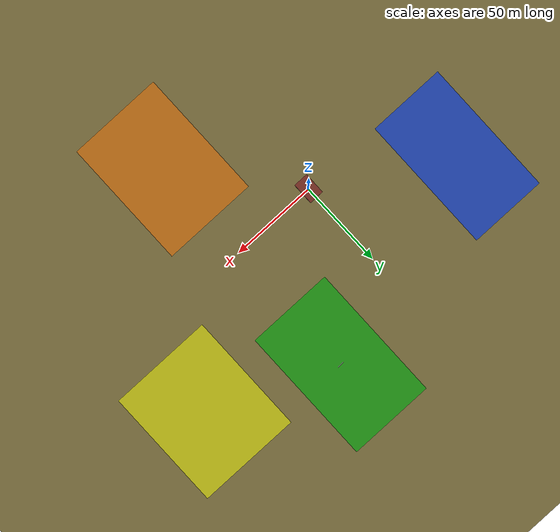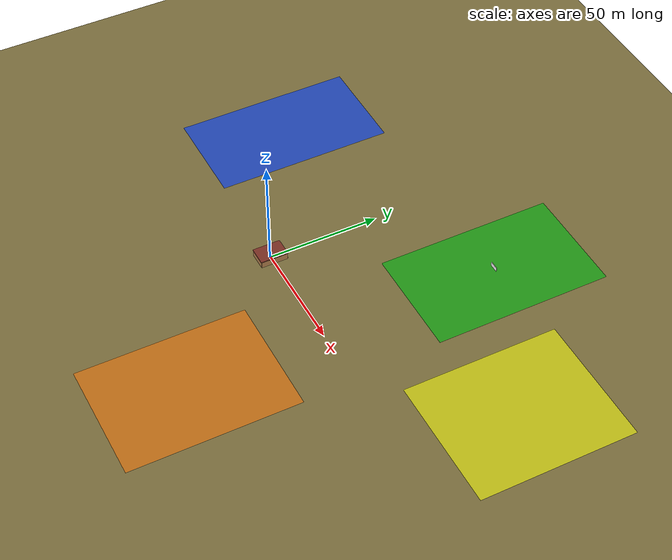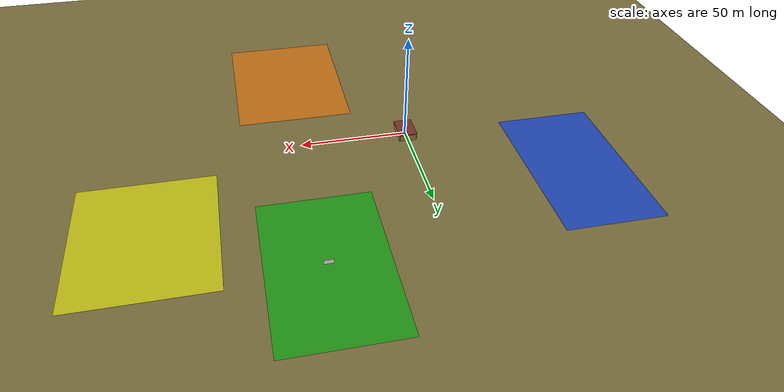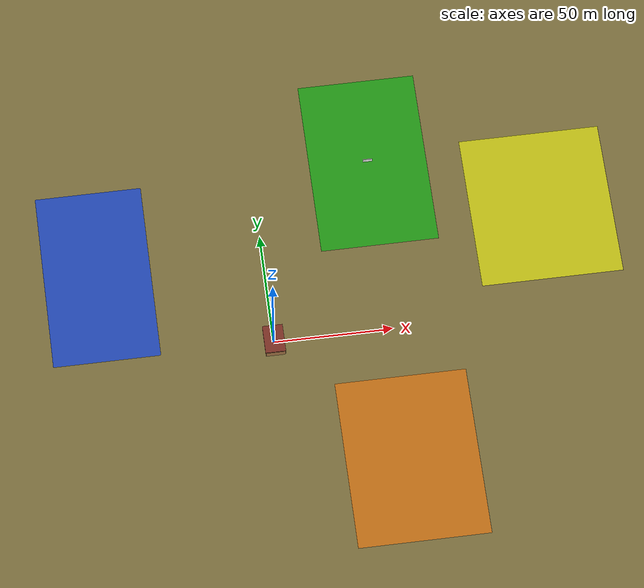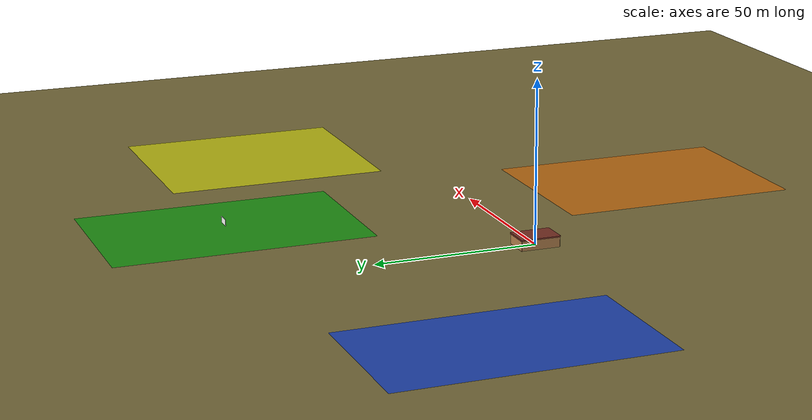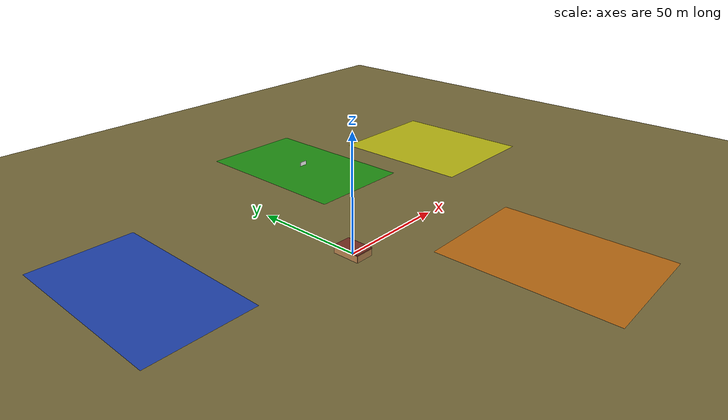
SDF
<?xml version="1.0"?>
<sdf version="1.9">
  <world name="agricultural_field">

    <!-- Physics -->
    <physics name="1ms" type="ignored">
      <max_step_size>0.001</max_step_size>
      <real_time_factor>1.0</real_time_factor>
    </physics>

    <!-- Plugins -->
    <plugin filename="gz-sim-physics-system" name="gz::sim::systems::Physics"/>
    <plugin filename="gz-sim-user-commands-system" name="gz::sim::systems::UserCommands"/>
    <plugin filename="gz-sim-scene-broadcaster-system" name="gz::sim::systems::SceneBroadcaster"/>
    <plugin filename="gz-sim-sensors-system" name="gz::sim::systems::Sensors">
      <render_engine>ogre2</render_engine>
    </plugin>
    <plugin filename="gz-sim-imu-system" name="gz::sim::systems::Imu"/>
    <plugin filename="gz-sim-magnetometer-system" name="gz::sim::systems::Magnetometer"/>
    <plugin filename="gz-sim-air-pressure-system" name="gz::sim::systems::AirPressure"/>

    <!-- Lighting -->
    <light name="sun" type="directional">
      <cast_shadows>true</cast_shadows>
      <pose>0 0 100 0 0 0</pose>
      <diffuse>0.9 0.9 0.9 1</diffuse>
      <specular>0.3 0.3 0.3 1</specular>
      <direction>-0.5 0.1 -0.9</direction>
    </light>

    <!-- Ground Plane -->
    <model name="ground_plane">
      <static>true</static>
      <link name="link">
        <collision name="collision">
          <geometry>
            <plane>
              <normal>0 0 1</normal>
              <size>500 500</size>
            </plane>
          </geometry>
        </collision>
        <visual name="visual">
          <geometry>
            <plane>
              <normal>0 0 1</normal>
              <size>500 500</size>
            </plane>
          </geometry>
          <material>
            <ambient>0.4 0.35 0.2 1</ambient>
            <diffuse>0.5 0.45 0.25 1</diffuse>
          </material>
        </visual>
      </link>
    </model>

    <!--  FIELD ZONES                                       -->

    <!-- Zone A - North Field (Green) centered at (50, 80) -->
    <model name="zone_A">
      <static>true</static>
      <pose>50 80 0.02 0 0 0</pose>
      <link name="link">
        <collision name="col">
          <geometry><box><size>50 80 0.04</size></box></geometry>
        </collision>
        <visual name="vis">
          <geometry><box><size>50 80 0.04</size></box></geometry>
          <material>
            <ambient>0.1 0.6 0.1 0.8</ambient>
            <diffuse>0.1 0.7 0.1 0.8</diffuse>
          </material>
        </visual>
      </link>
    </model>

    <!-- Zone A Label -->
    <model name="zone_A_sign">
      <static>true</static>
      <pose>50 80 2.0 0 0 0</pose>
      <link name="link">
        <visual name="vis">
          <geometry><box><size>4 0.2 2</size></box></geometry>
          <material><ambient>1 1 1 1</ambient><diffuse>1 1 1 1</diffuse></material>
        </visual>
      </link>
    </model>

    <!-- Zone B - East Field (Yellow) centered at (120, 50) -->
    <model name="zone_B">
      <static>true</static>
      <pose>120 50 0.02 0 0 0</pose>
      <link name="link">
        <collision name="col">
          <geometry><box><size>60 70 0.04</size></box></geometry>
        </collision>
        <visual name="vis">
          <geometry><box><size>60 70 0.04</size></box></geometry>
          <material>
            <ambient>0.8 0.8 0.1 0.8</ambient>
            <diffuse>0.9 0.9 0.1 0.8</diffuse>
          </material>
        </visual>
      </link>
    </model>

    <!-- Zone C - South Field (Orange) centered at (50, -60) -->
    <model name="zone_C">
      <static>true</static>
      <pose>50 -60 0.02 0 0 0</pose>
      <link name="link">
        <collision name="col">
          <geometry><box><size>55 75 0.04</size></box></geometry>
        </collision>
        <visual name="vis">
          <geometry><box><size>55 75 0.04</size></box></geometry>
          <material>
            <ambient>0.9 0.4 0.1 0.8</ambient>
            <diffuse>0.9 0.5 0.1 0.8</diffuse>
          </material>
        </visual>
      </link>
    </model>

    <!-- Zone D - West Field (Blue) centered at (-70, 40) -->
    <model name="zone_D">
      <static>true</static>
      <pose>-70 40 0.02 0 0 0</pose>
      <link name="link">
        <collision name="col">
          <geometry><box><size>45 80 0.04</size></box></geometry>
        </collision>
        <visual name="vis">
          <geometry><box><size>45 80 0.04</size></box></geometry>
          <material>
            <ambient>0.1 0.3 0.9 0.8</ambient>
            <diffuse>0.1 0.3 0.9 0.8</diffuse>
          </material>
        </visual>
      </link>
    </model>

    <!--  BASE / SHED                                       -->

    <!-- Shed floor -->
    <model name="shed_floor">
      <static>true</static>
      <pose>0 0 0.05 0 0 0</pose>
      <link name="link">
        <visual name="vis">
          <geometry><box><size>8 12 0.1</size></box></geometry>
          <material>
            <ambient>0.5 0.4 0.3 1</ambient>
            <diffuse>0.6 0.5 0.35 1</diffuse>
          </material>
        </visual>
      </link>
    </model>

    <!-- Shed walls -->
    <model name="shed_wall_front">
      <static>true</static>
      <pose>0 -6 1.5 0 0 0</pose>
      <link name="link">
        <collision name="col">
          <geometry><box><size>8 0.3 3</size></box></geometry>
        </collision>
        <visual name="vis">
          <geometry><box><size>8 0.3 3</size></box></geometry>
          <material><ambient>0.6 0.4 0.2 1</ambient><diffuse>0.7 0.5 0.3 1</diffuse></material>
        </visual>
      </link>
    </model>

    <model name="shed_wall_back">
      <static>true</static>
      <pose>0 6 1.5 0 0 0</pose>
      <link name="link">
        <collision name="col">
          <geometry><box><size>8 0.3 3</size></box></geometry>
        </collision>
        <visual name="vis">
          <geometry><box><size>8 0.3 3</size></box></geometry>
          <material><ambient>0.6 0.4 0.2 1</ambient><diffuse>0.7 0.5 0.3 1</diffuse></material>
        </visual>
      </link>
    </model>

    <model name="shed_wall_left">
      <static>true</static>
      <pose>-4 0 1.5 0 0 0</pose>
      <link name="link">
        <collision name="col">
          <geometry><box><size>0.3 12 3</size></box></geometry>
        </collision>
        <visual name="vis">
          <geometry><box><size>0.3 12 3</size></box></geometry>
          <material><ambient>0.6 0.4 0.2 1</ambient><diffuse>0.7 0.5 0.3 1</diffuse></material>
        </visual>
      </link>
    </model>

    <model name="shed_wall_right">
      <static>true</static>
      <pose>4 0 1.5 0 0 0</pose>
      <link name="link">
        <collision name="col">
          <geometry><box><size>0.3 12 3</size></box></geometry>
        </collision>
        <visual name="vis">
          <geometry><box><size>0.3 12 3</size></box></geometry>
          <material><ambient>0.6 0.4 0.2 1</ambient><diffuse>0.7 0.5 0.3 1</diffuse></material>
        </visual>
      </link>
    </model>

    <!-- Shed roof -->
    <model name="shed_roof">
      <static>true</static>
      <pose>0 0 3.2 0 0 0</pose>
      <link name="link">
        <visual name="vis">
          <geometry><box><size>8.5 12.5 0.4</size></box></geometry>
          <material><ambient>0.4 0.15 0.1 1</ambient><diffuse>0.5 0.2 0.15 1</diffuse></material>
        </visual>
      </link>
    </model>

    <!--  ROVER WITH CART + ARUCO MARKER                   -->
    <!--  Spawned here as a placeholder; actual model       -->
    <!--  spawned by PX4/launch via spawn_entity            -->

    <!-- ArUco marker plate on cart (visual reference) -->
    <model name="aruco_cart_marker">
      <static>false</static>
      <pose>0 0 0.6 0 0 0</pose>
      <link name="aruco_link">
        <visual name="aruco_vis">
          <geometry>
            <box><size>0.5 0.5 0.01</size></box>
          </geometry>
          <!-- Black and white ArUco-like pattern via material -->
          <material>
            <ambient>0.1 0.1 0.1 1</ambient>
            <diffuse>0.1 0.1 0.1 1</diffuse>
          </material>
        </visual>
        <!-- White border around marker -->
        <visual name="aruco_border">
          <geometry>
            <box><size>0.6 0.6 0.005</size></box>
          </geometry>
          <material>
            <ambient>0.95 0.95 0.95 1</ambient>
            <diffuse>0.95 0.95 0.95 1</diffuse>
          </material>
        </visual>
      </link>
    </model>

  </world>
</sdf>
